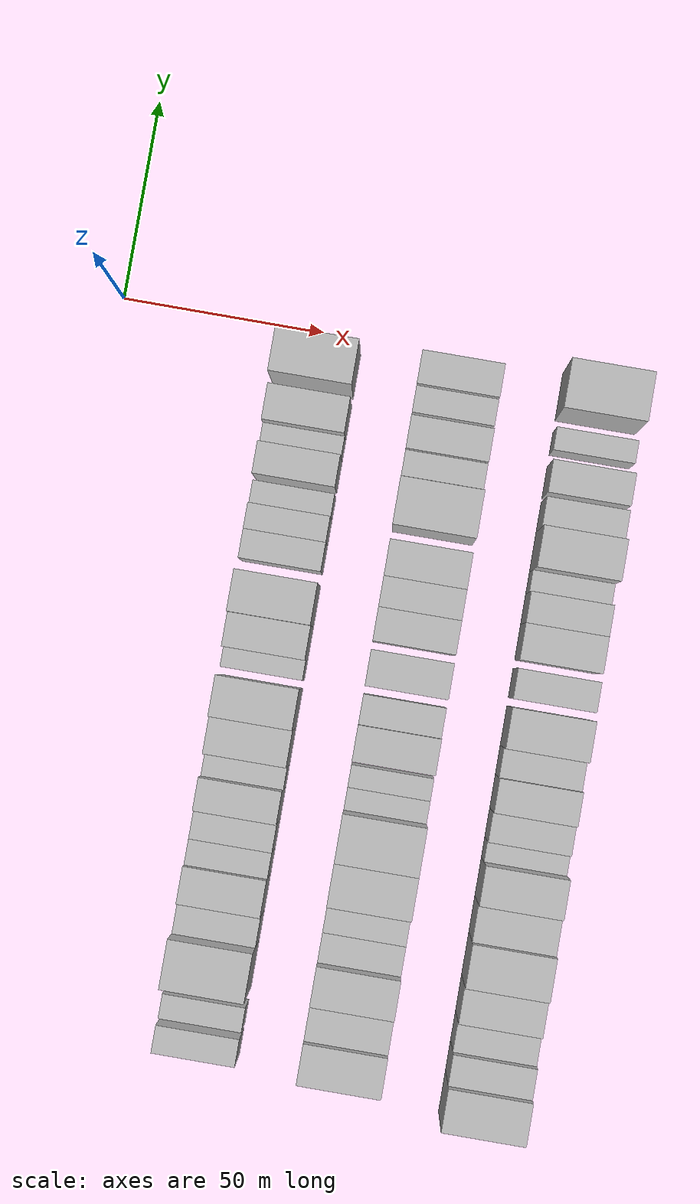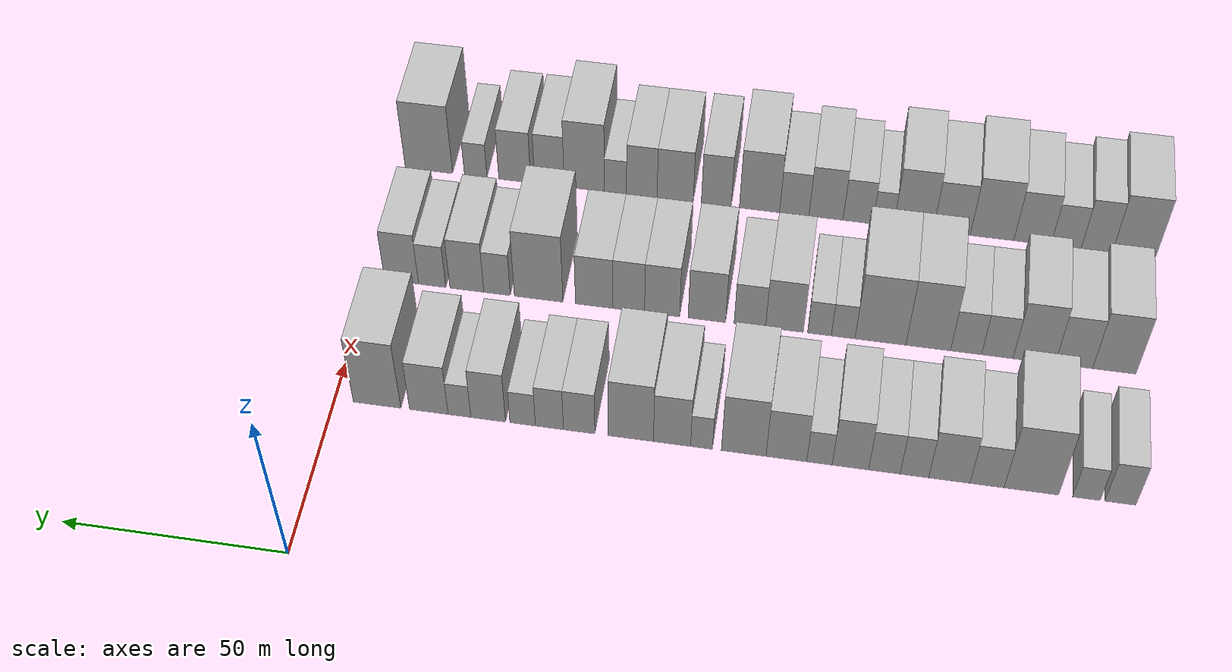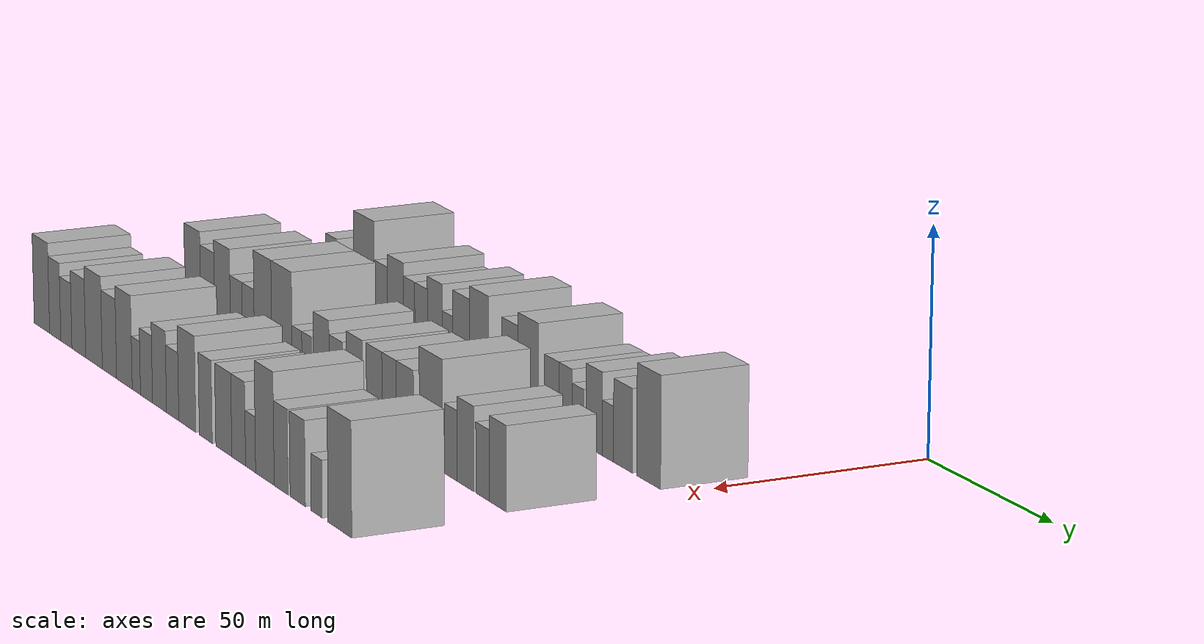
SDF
<sdf version="1.6">
 <world name="default">
  <model name="building_22">
   <static>1</static>
   <pose>50.0000 -174.5558 0 0.000000 0.000000 0.000000</pose>
   <link name="link">
    <pose>0 0 7.50 0 0 0</pose>
    <collision name="collision"><geometry><box><size>20.0000 6.6134 15.0000</size></box></geometry></collision>
    <visual name="visual">
     <cast_shadows>0</cast_shadows>
     <geometry><box><size>20.0000 6.6134 15.0000</size></box></geometry>
     <material>
      <script>
       <uri>model://HANNAS_wall/materials/scripts</uri>
       <uri>model://HANNAS_wall/materials/textures</uri>
       <name>vrc/HANNAS_wall</name>
      </script>
     </material>
    </visual>
   </link>
  </model>
  <model name="building_23">
   <static>1</static>
   <pose>50.0000 -167.2927 0 0.000000 0.000000 0.000000</pose>
   <link name="link">
    <pose>0 0 6.00 0 0 0</pose>
    <collision name="collision"><geometry><box><size>20.0000 5.9128 12.0000</size></box></geometry></collision>
    <visual name="visual">
     <cast_shadows>0</cast_shadows>
     <geometry><box><size>20.0000 5.9128 12.0000</size></box></geometry>
     <material>
      <script>
       <uri>model://HANNAS_wall/materials/scripts</uri>
       <uri>model://HANNAS_wall/materials/textures</uri>
       <name>vrc/HANNAS_wall</name>
      </script>
     </material>
    </visual>
   </link>
  </model>
  <model name="building_24">
   <static>1</static>
   <pose>50.0000 -155.4569 0 0.000000 0.000000 0.000000</pose>
   <link name="link">
    <pose>0 0 12.00 0 0 0</pose>
    <collision name="collision"><geometry><box><size>20.0000 11.7588 24.0000</size></box></geometry></collision>
    <visual name="visual">
     <cast_shadows>0</cast_shadows>
     <geometry><box><size>20.0000 11.7588 24.0000</size></box></geometry>
     <material>
      <script>
       <uri>model://HANNAS_wall/materials/scripts</uri>
       <uri>model://HANNAS_wall/materials/textures</uri>
       <name>vrc/HANNAS_wall</name>
      </script>
     </material>
    </visual>
   </link>
  </model>
  <model name="building_25">
   <static>1</static>
   <pose>50.0000 -145.8737 0 0.000000 0.000000 0.000000</pose>
   <link name="link">
    <pose>0 0 7.50 0 0 0</pose>
    <collision name="collision"><geometry><box><size>20.0000 7.4076 15.0000</size></box></geometry></collision>
    <visual name="visual">
     <cast_shadows>0</cast_shadows>
     <geometry><box><size>20.0000 7.4076 15.0000</size></box></geometry>
     <material>
      <script>
       <uri>model://HANNAS_wall/materials/scripts</uri>
       <uri>model://HANNAS_wall/materials/textures</uri>
       <name>vrc/HANNAS_wall</name>
      </script>
     </material>
    </visual>
   </link>
  </model>
  <model name="building_26">
   <static>1</static>
   <pose>50.0000 -137.6836 0 0.000000 0.000000 0.000000</pose>
   <link name="link">
    <pose>0 0 9.00 0 0 0</pose>
    <collision name="collision"><geometry><box><size>20.0000 8.9725 18.0000</size></box></geometry></collision>
    <visual name="visual">
     <cast_shadows>0</cast_shadows>
     <geometry><box><size>20.0000 8.9725 18.0000</size></box></geometry>
     <material>
      <script>
       <uri>model://HANNAS_wall/materials/scripts</uri>
       <uri>model://HANNAS_wall/materials/textures</uri>
       <name>vrc/HANNAS_wall</name>
      </script>
     </material>
    </visual>
   </link>
  </model>
  <model name="building_27">
   <static>1</static>
   <pose>50.0000 -130.0861 0 0.000000 0.000000 0.000000</pose>
   <link name="link">
    <pose>0 0 7.50 0 0 0</pose>
    <collision name="collision"><geometry><box><size>20.0000 6.2227 15.0000</size></box></geometry></collision>
    <visual name="visual">
     <cast_shadows>0</cast_shadows>
     <geometry><box><size>20.0000 6.2227 15.0000</size></box></geometry>
     <material>
      <script>
       <uri>model://HANNAS_wall/materials/scripts</uri>
       <uri>model://HANNAS_wall/materials/textures</uri>
       <name>vrc/HANNAS_wall</name>
      </script>
     </material>
    </visual>
   </link>
  </model>
  <model name="building_28">
   <static>1</static>
   <pose>50.0000 -123.5246 0 0.000000 0.000000 0.000000</pose>
   <link name="link">
    <pose>0 0 7.50 0 0 0</pose>
    <collision name="collision"><geometry><box><size>20.0000 6.9003 15.0000</size></box></geometry></collision>
    <visual name="visual">
     <cast_shadows>0</cast_shadows>
     <geometry><box><size>20.0000 6.9003 15.0000</size></box></geometry>
     <material>
      <script>
       <uri>model://HANNAS_wall/materials/scripts</uri>
       <uri>model://HANNAS_wall/materials/textures</uri>
       <name>vrc/HANNAS_wall</name>
      </script>
     </material>
    </visual>
   </link>
  </model>
  <model name="building_29">
   <static>1</static>
   <pose>50.0000 -116.0841 0 0.000000 0.000000 0.000000</pose>
   <link name="link">
    <pose>0 0 9.00 0 0 0</pose>
    <collision name="collision"><geometry><box><size>20.0000 7.9808 18.0000</size></box></geometry></collision>
    <visual name="visual">
     <cast_shadows>0</cast_shadows>
     <geometry><box><size>20.0000 7.9808 18.0000</size></box></geometry>
     <material>
      <script>
       <uri>model://HANNAS_wall/materials/scripts</uri>
       <uri>model://HANNAS_wall/materials/textures</uri>
       <name>vrc/HANNAS_wall</name>
      </script>
     </material>
    </visual>
   </link>
  </model>
  <model name="building_30">
   <static>1</static>
   <pose>50.0000 -109.2844 0 0.000000 0.000000 0.000000</pose>
   <link name="link">
    <pose>0 0 6.00 0 0 0</pose>
    <collision name="collision"><geometry><box><size>20.0000 5.6186 12.0000</size></box></geometry></collision>
    <visual name="visual">
     <cast_shadows>0</cast_shadows>
     <geometry><box><size>20.0000 5.6186 12.0000</size></box></geometry>
     <material>
      <script>
       <uri>model://HANNAS_wall/materials/scripts</uri>
       <uri>model://HANNAS_wall/materials/textures</uri>
       <name>vrc/HANNAS_wall</name>
      </script>
     </material>
    </visual>
   </link>
  </model>
  <model name="building_31">
   <static>1</static>
   <pose>50.0000 -101.9850 0 0.000000 0.000000 0.000000</pose>
   <link name="link">
    <pose>0 0 9.00 0 0 0</pose>
    <collision name="collision"><geometry><box><size>20.0000 8.9801 18.0000</size></box></geometry></collision>
    <visual name="visual">
     <cast_shadows>0</cast_shadows>
     <geometry><box><size>20.0000 8.9801 18.0000</size></box></geometry>
     <material>
      <script>
       <uri>model://HANNAS_wall/materials/scripts</uri>
       <uri>model://HANNAS_wall/materials/textures</uri>
       <name>vrc/HANNAS_wall</name>
      </script>
     </material>
    </visual>
   </link>
  </model>
  <model name="building_32">
   <static>1</static>
   <pose>50.0000 -92.5490 0 0.000000 0.000000 0.000000</pose>
   <link name="link">
    <pose>0 0 10.50 0 0 0</pose>
    <collision name="collision"><geometry><box><size>20.0000 9.8919 21.0000</size></box></geometry></collision>
    <visual name="visual">
     <cast_shadows>0</cast_shadows>
     <geometry><box><size>20.0000 9.8919 21.0000</size></box></geometry>
     <material>
      <script>
       <uri>model://HANNAS_wall/materials/scripts</uri>
       <uri>model://HANNAS_wall/materials/textures</uri>
       <name>vrc/HANNAS_wall</name>
      </script>
     </material>
    </visual>
   </link>
  </model>
  <model name="building_33">
   <static>1</static>
   <pose>50.0000 -83.1782 0 0.000000 0.000000 0.000000</pose>
   <link name="link">
    <pose>0 0 6.00 0 0 0</pose>
    <collision name="collision"><geometry><box><size>20.0000 4.8496 12.0000</size></box></geometry></collision>
    <visual name="visual">
     <cast_shadows>0</cast_shadows>
     <geometry><box><size>20.0000 4.8496 12.0000</size></box></geometry>
     <material>
      <script>
       <uri>model://HANNAS_wall/materials/scripts</uri>
       <uri>model://HANNAS_wall/materials/textures</uri>
       <name>vrc/HANNAS_wall</name>
      </script>
     </material>
    </visual>
   </link>
  </model>
  <model name="building_34">
   <static>1</static>
   <pose>50.0000 -76.5989 0 0.000000 0.000000 0.000000</pose>
   <link name="link">
    <pose>0 0 9.00 0 0 0</pose>
    <collision name="collision"><geometry><box><size>20.0000 8.3091 18.0000</size></box></geometry></collision>
    <visual name="visual">
     <cast_shadows>0</cast_shadows>
     <geometry><box><size>20.0000 8.3091 18.0000</size></box></geometry>
     <material>
      <script>
       <uri>model://HANNAS_wall/materials/scripts</uri>
       <uri>model://HANNAS_wall/materials/textures</uri>
       <name>vrc/HANNAS_wall</name>
      </script>
     </material>
    </visual>
   </link>
  </model>
  <model name="building_35">
   <static>1</static>
   <pose>50.0000 -67.3778 0 0.000000 0.000000 0.000000</pose>
   <link name="link">
    <pose>0 0 10.50 0 0 0</pose>
    <collision name="collision"><geometry><box><size>20.0000 10.1330 21.0000</size></box></geometry></collision>
    <visual name="visual">
     <cast_shadows>0</cast_shadows>
     <geometry><box><size>20.0000 10.1330 21.0000</size></box></geometry>
     <material>
      <script>
       <uri>model://HANNAS_wall/materials/scripts</uri>
       <uri>model://HANNAS_wall/materials/textures</uri>
       <name>vrc/HANNAS_wall</name>
      </script>
     </material>
    </visual>
   </link>
  </model>
  <model name="building_36">
   <static>1</static>
   <pose>50.0000 -55.7627 0 0.000000 0.000000 0.000000</pose>
   <link name="link">
    <pose>0 0 7.50 0 0 0</pose>
    <collision name="collision"><geometry><box><size>20.0000 7.0973 15.0000</size></box></geometry></collision>
    <visual name="visual">
     <cast_shadows>0</cast_shadows>
     <geometry><box><size>20.0000 7.0973 15.0000</size></box></geometry>
     <material>
      <script>
       <uri>model://HANNAS_wall/materials/scripts</uri>
       <uri>model://HANNAS_wall/materials/textures</uri>
       <name>vrc/HANNAS_wall</name>
      </script>
     </material>
    </visual>
   </link>
  </model>
  <model name="building_37">
   <static>1</static>
   <pose>50.0000 -49.0424 0 0.000000 0.000000 0.000000</pose>
   <link name="link">
    <pose>0 0 7.50 0 0 0</pose>
    <collision name="collision"><geometry><box><size>20.0000 6.3432 15.0000</size></box></geometry></collision>
    <visual name="visual">
     <cast_shadows>0</cast_shadows>
     <geometry><box><size>20.0000 6.3432 15.0000</size></box></geometry>
     <material>
      <script>
       <uri>model://HANNAS_wall/materials/scripts</uri>
       <uri>model://HANNAS_wall/materials/textures</uri>
       <name>vrc/HANNAS_wall</name>
      </script>
     </material>
    </visual>
   </link>
  </model>
  <model name="building_38">
   <static>1</static>
   <pose>50.0000 -42.9923 0 0.000000 0.000000 0.000000</pose>
   <link name="link">
    <pose>0 0 6.00 0 0 0</pose>
    <collision name="collision"><geometry><box><size>20.0000 5.7570 12.0000</size></box></geometry></collision>
    <visual name="visual">
     <cast_shadows>0</cast_shadows>
     <geometry><box><size>20.0000 5.7570 12.0000</size></box></geometry>
     <material>
      <script>
       <uri>model://HANNAS_wall/materials/scripts</uri>
       <uri>model://HANNAS_wall/materials/textures</uri>
       <name>vrc/HANNAS_wall</name>
      </script>
     </material>
    </visual>
   </link>
  </model>
  <model name="building_39">
   <static>1</static>
   <pose>50.0000 -35.1709 0 0.000000 0.000000 0.000000</pose>
   <link name="link">
    <pose>0 0 9.00 0 0 0</pose>
    <collision name="collision"><geometry><box><size>20.0000 7.8859 18.0000</size></box></geometry></collision>
    <visual name="visual">
     <cast_shadows>0</cast_shadows>
     <geometry><box><size>20.0000 7.8859 18.0000</size></box></geometry>
     <material>
      <script>
       <uri>model://HANNAS_wall/materials/scripts</uri>
       <uri>model://HANNAS_wall/materials/textures</uri>
       <name>vrc/HANNAS_wall</name>
      </script>
     </material>
    </visual>
   </link>
  </model>
  <model name="building_40">
   <static>1</static>
   <pose>50.0000 -28.6273 0 0.000000 0.000000 0.000000</pose>
   <link name="link">
    <pose>0 0 6.00 0 0 0</pose>
    <collision name="collision"><geometry><box><size>20.0000 5.2014 12.0000</size></box></geometry></collision>
    <visual name="visual">
     <cast_shadows>0</cast_shadows>
     <geometry><box><size>20.0000 5.2014 12.0000</size></box></geometry>
     <material>
      <script>
       <uri>model://HANNAS_wall/materials/scripts</uri>
       <uri>model://HANNAS_wall/materials/textures</uri>
       <name>vrc/HANNAS_wall</name>
      </script>
     </material>
    </visual>
   </link>
  </model>
  <model name="building_41">
   <static>1</static>
   <pose>50.0000 -21.6222 0 0.000000 0.000000 0.000000</pose>
   <link name="link">
    <pose>0 0 9.00 0 0 0</pose>
    <collision name="collision"><geometry><box><size>20.0000 8.8088 18.0000</size></box></geometry></collision>
    <visual name="visual">
     <cast_shadows>0</cast_shadows>
     <geometry><box><size>20.0000 8.8088 18.0000</size></box></geometry>
     <material>
      <script>
       <uri>model://HANNAS_wall/materials/scripts</uri>
       <uri>model://HANNAS_wall/materials/textures</uri>
       <name>vrc/HANNAS_wall</name>
      </script>
     </material>
    </visual>
   </link>
  </model>
  <model name="building_42">
   <static>1</static>
   <pose>50.0000 -9.7464 0 0.000000 0.000000 0.000000</pose>
   <link name="link">
    <pose>0 0 12.00 0 0 0</pose>
    <collision name="collision"><geometry><box><size>20.0000 10.9427 24.0000</size></box></geometry></collision>
    <visual name="visual">
     <cast_shadows>0</cast_shadows>
     <geometry><box><size>20.0000 10.9427 24.0000</size></box></geometry>
     <material>
      <script>
       <uri>model://HANNAS_wall/materials/scripts</uri>
       <uri>model://HANNAS_wall/materials/textures</uri>
       <name>vrc/HANNAS_wall</name>
      </script>
     </material>
    </visual>
   </link>
  </model>
  <model name="building_105">
   <static>1</static>
   <pose>85.0000 -173.3195 0 0.000000 0.000000 0.000000</pose>
   <link name="link">
    <pose>0 0 10.50 0 0 0</pose>
    <collision name="collision"><geometry><box><size>20.0000 9.7576 21.0000</size></box></geometry></collision>
    <visual name="visual">
     <cast_shadows>0</cast_shadows>
     <geometry><box><size>20.0000 9.7576 21.0000</size></box></geometry>
     <material>
      <script>
       <uri>model://HANNAS_wall/materials/scripts</uri>
       <uri>model://HANNAS_wall/materials/textures</uri>
       <name>vrc/HANNAS_wall</name>
      </script>
     </material>
    </visual>
   </link>
  </model>
  <model name="building_106">
   <static>1</static>
   <pose>85.0000 -164.2021 0 0.000000 0.000000 0.000000</pose>
   <link name="link">
    <pose>0 0 9.00 0 0 0</pose>
    <collision name="collision"><geometry><box><size>20.0000 8.4773 18.0000</size></box></geometry></collision>
    <visual name="visual">
     <cast_shadows>0</cast_shadows>
     <geometry><box><size>20.0000 8.4773 18.0000</size></box></geometry>
     <material>
      <script>
       <uri>model://HANNAS_wall/materials/scripts</uri>
       <uri>model://HANNAS_wall/materials/textures</uri>
       <name>vrc/HANNAS_wall</name>
      </script>
     </material>
    </visual>
   </link>
  </model>
  <model name="building_107">
   <static>1</static>
   <pose>85.0000 -155.1907 0 0.000000 0.000000 0.000000</pose>
   <link name="link">
    <pose>0 0 10.50 0 0 0</pose>
    <collision name="collision"><geometry><box><size>20.0000 9.5456 21.0000</size></box></geometry></collision>
    <visual name="visual">
     <cast_shadows>0</cast_shadows>
     <geometry><box><size>20.0000 9.5456 21.0000</size></box></geometry>
     <material>
      <script>
       <uri>model://HANNAS_wall/materials/scripts</uri>
       <uri>model://HANNAS_wall/materials/textures</uri>
       <name>vrc/HANNAS_wall</name>
      </script>
     </material>
    </visual>
   </link>
  </model>
  <model name="building_108">
   <static>1</static>
   <pose>85.0000 -146.8540 0 0.000000 0.000000 0.000000</pose>
   <link name="link">
    <pose>0 0 7.50 0 0 0</pose>
    <collision name="collision"><geometry><box><size>20.0000 7.1278 15.0000</size></box></geometry></collision>
    <visual name="visual">
     <cast_shadows>0</cast_shadows>
     <geometry><box><size>20.0000 7.1278 15.0000</size></box></geometry>
     <material>
      <script>
       <uri>model://HANNAS_wall/materials/scripts</uri>
       <uri>model://HANNAS_wall/materials/textures</uri>
       <name>vrc/HANNAS_wall</name>
      </script>
     </material>
    </visual>
   </link>
  </model>
  <model name="building_109">
   <static>1</static>
   <pose>85.0000 -139.7473 0 0.000000 0.000000 0.000000</pose>
   <link name="link">
    <pose>0 0 7.50 0 0 0</pose>
    <collision name="collision"><geometry><box><size>20.0000 7.0855 15.0000</size></box></geometry></collision>
    <visual name="visual">
     <cast_shadows>0</cast_shadows>
     <geometry><box><size>20.0000 7.0855 15.0000</size></box></geometry>
     <material>
      <script>
       <uri>model://HANNAS_wall/materials/scripts</uri>
       <uri>model://HANNAS_wall/materials/textures</uri>
       <name>vrc/HANNAS_wall</name>
      </script>
     </material>
    </visual>
   </link>
  </model>
  <model name="building_110">
   <static>1</static>
   <pose>85.0000 -131.0935 0 0.000000 0.000000 0.000000</pose>
   <link name="link">
    <pose>0 0 12.00 0 0 0</pose>
    <collision name="collision"><geometry><box><size>20.0000 10.2220 24.0000</size></box></geometry></collision>
    <visual name="visual">
     <cast_shadows>0</cast_shadows>
     <geometry><box><size>20.0000 10.2220 24.0000</size></box></geometry>
     <material>
      <script>
       <uri>model://HANNAS_wall/materials/scripts</uri>
       <uri>model://HANNAS_wall/materials/textures</uri>
       <name>vrc/HANNAS_wall</name>
      </script>
     </material>
    </visual>
   </link>
  </model>
  <model name="building_111">
   <static>1</static>
   <pose>85.0000 -120.1341 0 0.000000 0.000000 0.000000</pose>
   <link name="link">
    <pose>0 0 12.00 0 0 0</pose>
    <collision name="collision"><geometry><box><size>20.0000 11.6970 24.0000</size></box></geometry></collision>
    <visual name="visual">
     <cast_shadows>0</cast_shadows>
     <geometry><box><size>20.0000 11.6970 24.0000</size></box></geometry>
     <material>
      <script>
       <uri>model://HANNAS_wall/materials/scripts</uri>
       <uri>model://HANNAS_wall/materials/textures</uri>
       <name>vrc/HANNAS_wall</name>
      </script>
     </material>
    </visual>
   </link>
  </model>
  <model name="building_112">
   <static>1</static>
   <pose>85.0000 -111.5449 0 0.000000 0.000000 0.000000</pose>
   <link name="link">
    <pose>0 0 6.00 0 0 0</pose>
    <collision name="collision"><geometry><box><size>20.0000 5.4813 12.0000</size></box></geometry></collision>
    <visual name="visual">
     <cast_shadows>0</cast_shadows>
     <geometry><box><size>20.0000 5.4813 12.0000</size></box></geometry>
     <material>
      <script>
       <uri>model://HANNAS_wall/materials/scripts</uri>
       <uri>model://HANNAS_wall/materials/textures</uri>
       <name>vrc/HANNAS_wall</name>
      </script>
     </material>
    </visual>
   </link>
  </model>
  <model name="building_113">
   <static>1</static>
   <pose>85.0000 -106.0709 0 0.000000 0.000000 0.000000</pose>
   <link name="link">
    <pose>0 0 6.00 0 0 0</pose>
    <collision name="collision"><geometry><box><size>20.0000 5.4667 12.0000</size></box></geometry></collision>
    <visual name="visual">
     <cast_shadows>0</cast_shadows>
     <geometry><box><size>20.0000 5.4667 12.0000</size></box></geometry>
     <material>
      <script>
       <uri>model://HANNAS_wall/materials/scripts</uri>
       <uri>model://HANNAS_wall/materials/textures</uri>
       <name>vrc/HANNAS_wall</name>
      </script>
     </material>
    </visual>
   </link>
  </model>
  <model name="building_114">
   <static>1</static>
   <pose>85.0000 -97.9520 0 0.000000 0.000000 0.000000</pose>
   <link name="link">
    <pose>0 0 9.00 0 0 0</pose>
    <collision name="collision"><geometry><box><size>20.0000 8.7711 18.0000</size></box></geometry></collision>
    <visual name="visual">
     <cast_shadows>0</cast_shadows>
     <geometry><box><size>20.0000 8.7711 18.0000</size></box></geometry>
     <material>
      <script>
       <uri>model://HANNAS_wall/materials/scripts</uri>
       <uri>model://HANNAS_wall/materials/textures</uri>
       <name>vrc/HANNAS_wall</name>
      </script>
     </material>
    </visual>
   </link>
  </model>
  <model name="building_115">
   <static>1</static>
   <pose>85.0000 -89.9002 0 0.000000 0.000000 0.000000</pose>
   <link name="link">
    <pose>0 0 7.50 0 0 0</pose>
    <collision name="collision"><geometry><box><size>20.0000 7.3324 15.0000</size></box></geometry></collision>
    <visual name="visual">
     <cast_shadows>0</cast_shadows>
     <geometry><box><size>20.0000 7.3324 15.0000</size></box></geometry>
     <material>
      <script>
       <uri>model://HANNAS_wall/materials/scripts</uri>
       <uri>model://HANNAS_wall/materials/textures</uri>
       <name>vrc/HANNAS_wall</name>
      </script>
     </material>
    </visual>
   </link>
  </model>
  <model name="building_116">
   <static>1</static>
   <pose>85.0000 -79.8592 0 0.000000 0.000000 0.000000</pose>
   <link name="link">
    <pose>0 0 9.00 0 0 0</pose>
    <collision name="collision"><geometry><box><size>20.0000 8.7495 18.0000</size></box></geometry></collision>
    <visual name="visual">
     <cast_shadows>0</cast_shadows>
     <geometry><box><size>20.0000 8.7495 18.0000</size></box></geometry>
     <material>
      <script>
       <uri>model://HANNAS_wall/materials/scripts</uri>
       <uri>model://HANNAS_wall/materials/textures</uri>
       <name>vrc/HANNAS_wall</name>
      </script>
     </material>
    </visual>
   </link>
  </model>
  <model name="building_117">
   <static>1</static>
   <pose>85.0000 -69.3594 0 0.000000 0.000000 0.000000</pose>
   <link name="link">
    <pose>0 0 9.00 0 0 0</pose>
    <collision name="collision"><geometry><box><size>20.0000 8.2502 18.0000</size></box></geometry></collision>
    <visual name="visual">
     <cast_shadows>0</cast_shadows>
     <geometry><box><size>20.0000 8.2502 18.0000</size></box></geometry>
     <material>
      <script>
       <uri>model://HANNAS_wall/materials/scripts</uri>
       <uri>model://HANNAS_wall/materials/textures</uri>
       <name>vrc/HANNAS_wall</name>
      </script>
     </material>
    </visual>
   </link>
  </model>
  <model name="building_118">
   <static>1</static>
   <pose>85.0000 -61.5029 0 0.000000 0.000000 0.000000</pose>
   <link name="link">
    <pose>0 0 9.00 0 0 0</pose>
    <collision name="collision"><geometry><box><size>20.0000 7.4628 18.0000</size></box></geometry></collision>
    <visual name="visual">
     <cast_shadows>0</cast_shadows>
     <geometry><box><size>20.0000 7.4628 18.0000</size></box></geometry>
     <material>
      <script>
       <uri>model://HANNAS_wall/materials/scripts</uri>
       <uri>model://HANNAS_wall/materials/textures</uri>
       <name>vrc/HANNAS_wall</name>
      </script>
     </material>
    </visual>
   </link>
  </model>
  <model name="building_119">
   <static>1</static>
   <pose>85.0000 -53.3447 0 0.000000 0.000000 0.000000</pose>
   <link name="link">
    <pose>0 0 9.00 0 0 0</pose>
    <collision name="collision"><geometry><box><size>20.0000 8.8536 18.0000</size></box></geometry></collision>
    <visual name="visual">
     <cast_shadows>0</cast_shadows>
     <geometry><box><size>20.0000 8.8536 18.0000</size></box></geometry>
     <material>
      <script>
       <uri>model://HANNAS_wall/materials/scripts</uri>
       <uri>model://HANNAS_wall/materials/textures</uri>
       <name>vrc/HANNAS_wall</name>
      </script>
     </material>
    </visual>
   </link>
  </model>
  <model name="building_120">
   <static>1</static>
   <pose>85.0000 -40.1469 0 0.000000 0.000000 0.000000</pose>
   <link name="link">
    <pose>0 0 12.00 0 0 0</pose>
    <collision name="collision"><geometry><box><size>20.0000 11.5421 24.0000</size></box></geometry></collision>
    <visual name="visual">
     <cast_shadows>0</cast_shadows>
     <geometry><box><size>20.0000 11.5421 24.0000</size></box></geometry>
     <material>
      <script>
       <uri>model://HANNAS_wall/materials/scripts</uri>
       <uri>model://HANNAS_wall/materials/textures</uri>
       <name>vrc/HANNAS_wall</name>
      </script>
     </material>
    </visual>
   </link>
  </model>
  <model name="building_121">
   <static>1</static>
   <pose>85.0000 -30.2189 0 0.000000 0.000000 0.000000</pose>
   <link name="link">
    <pose>0 0 7.50 0 0 0</pose>
    <collision name="collision"><geometry><box><size>20.0000 6.3140 15.0000</size></box></geometry></collision>
    <visual name="visual">
     <cast_shadows>0</cast_shadows>
     <geometry><box><size>20.0000 6.3140 15.0000</size></box></geometry>
     <material>
      <script>
       <uri>model://HANNAS_wall/materials/scripts</uri>
       <uri>model://HANNAS_wall/materials/textures</uri>
       <name>vrc/HANNAS_wall</name>
      </script>
     </material>
    </visual>
   </link>
  </model>
  <model name="building_122">
   <static>1</static>
   <pose>85.0000 -22.9993 0 0.000000 0.000000 0.000000</pose>
   <link name="link">
    <pose>0 0 9.00 0 0 0</pose>
    <collision name="collision"><geometry><box><size>20.0000 8.1250 18.0000</size></box></geometry></collision>
    <visual name="visual">
     <cast_shadows>0</cast_shadows>
     <geometry><box><size>20.0000 8.1250 18.0000</size></box></geometry>
     <material>
      <script>
       <uri>model://HANNAS_wall/materials/scripts</uri>
       <uri>model://HANNAS_wall/materials/textures</uri>
       <name>vrc/HANNAS_wall</name>
      </script>
     </material>
    </visual>
   </link>
  </model>
  <model name="building_123">
   <static>1</static>
   <pose>85.0000 -14.6637 0 0.000000 0.000000 0.000000</pose>
   <link name="link">
    <pose>0 0 7.50 0 0 0</pose>
    <collision name="collision"><geometry><box><size>20.0000 6.5463 15.0000</size></box></geometry></collision>
    <visual name="visual">
     <cast_shadows>0</cast_shadows>
     <geometry><box><size>20.0000 6.5463 15.0000</size></box></geometry>
     <material>
      <script>
       <uri>model://HANNAS_wall/materials/scripts</uri>
       <uri>model://HANNAS_wall/materials/textures</uri>
       <name>vrc/HANNAS_wall</name>
      </script>
     </material>
    </visual>
   </link>
  </model>
  <model name="building_124">
   <static>1</static>
   <pose>85.0000 -7.3008 0 0.000000 0.000000 0.000000</pose>
   <link name="link">
    <pose>0 0 9.00 0 0 0</pose>
    <collision name="collision"><geometry><box><size>20.0000 8.1794 18.0000</size></box></geometry></collision>
    <visual name="visual">
     <cast_shadows>0</cast_shadows>
     <geometry><box><size>20.0000 8.1794 18.0000</size></box></geometry>
     <material>
      <script>
       <uri>model://HANNAS_wall/materials/scripts</uri>
       <uri>model://HANNAS_wall/materials/textures</uri>
       <name>vrc/HANNAS_wall</name>
      </script>
     </material>
    </visual>
   </link>
  </model>
  <model name="building_186">
   <static>1</static>
   <pose>120.0000 -178.0588 0 0.000000 0.000000 0.000000</pose>
   <link name="link">
    <pose>0 0 10.50 0 0 0</pose>
    <collision name="collision"><geometry><box><size>20.0000 10.1929 21.0000</size></box></geometry></collision>
    <visual name="visual">
     <cast_shadows>0</cast_shadows>
     <geometry><box><size>20.0000 10.1929 21.0000</size></box></geometry>
     <material>
      <script>
       <uri>model://HANNAS_wall/materials/scripts</uri>
       <uri>model://HANNAS_wall/materials/textures</uri>
       <name>vrc/HANNAS_wall</name>
      </script>
     </material>
    </visual>
   </link>
  </model>
  <model name="building_187">
   <static>1</static>
   <pose>120.0000 -169.2877 0 0.000000 0.000000 0.000000</pose>
   <link name="link">
    <pose>0 0 9.00 0 0 0</pose>
    <collision name="collision"><geometry><box><size>20.0000 7.3493 18.0000</size></box></geometry></collision>
    <visual name="visual">
     <cast_shadows>0</cast_shadows>
     <geometry><box><size>20.0000 7.3493 18.0000</size></box></geometry>
     <material>
      <script>
       <uri>model://HANNAS_wall/materials/scripts</uri>
       <uri>model://HANNAS_wall/materials/textures</uri>
       <name>vrc/HANNAS_wall</name>
      </script>
     </material>
    </visual>
   </link>
  </model>
  <model name="building_188">
   <static>1</static>
   <pose>120.0000 -162.0311 0 0.000000 0.000000 0.000000</pose>
   <link name="link">
    <pose>0 0 7.50 0 0 0</pose>
    <collision name="collision"><geometry><box><size>20.0000 7.1641 15.0000</size></box></geometry></collision>
    <visual name="visual">
     <cast_shadows>0</cast_shadows>
     <geometry><box><size>20.0000 7.1641 15.0000</size></box></geometry>
     <material>
      <script>
       <uri>model://HANNAS_wall/materials/scripts</uri>
       <uri>model://HANNAS_wall/materials/textures</uri>
       <name>vrc/HANNAS_wall</name>
      </script>
     </material>
    </visual>
   </link>
  </model>
  <model name="building_189">
   <static>1</static>
   <pose>120.0000 -154.0308 0 0.000000 0.000000 0.000000</pose>
   <link name="link">
    <pose>0 0 9.00 0 0 0</pose>
    <collision name="collision"><geometry><box><size>20.0000 8.8364 18.0000</size></box></geometry></collision>
    <visual name="visual">
     <cast_shadows>0</cast_shadows>
     <geometry><box><size>20.0000 8.8364 18.0000</size></box></geometry>
     <material>
      <script>
       <uri>model://HANNAS_wall/materials/scripts</uri>
       <uri>model://HANNAS_wall/materials/textures</uri>
       <name>vrc/HANNAS_wall</name>
      </script>
     </material>
    </visual>
   </link>
  </model>
  <model name="building_190">
   <static>1</static>
   <pose>120.0000 -144.3987 0 0.000000 0.000000 0.000000</pose>
   <link name="link">
    <pose>0 0 10.50 0 0 0</pose>
    <collision name="collision"><geometry><box><size>20.0000 10.4277 21.0000</size></box></geometry></collision>
    <visual name="visual">
     <cast_shadows>0</cast_shadows>
     <geometry><box><size>20.0000 10.4277 21.0000</size></box></geometry>
     <material>
      <script>
       <uri>model://HANNAS_wall/materials/scripts</uri>
       <uri>model://HANNAS_wall/materials/textures</uri>
       <name>vrc/HANNAS_wall</name>
      </script>
     </material>
    </visual>
   </link>
  </model>
  <model name="building_191">
   <static>1</static>
   <pose>120.0000 -134.7394 0 0.000000 0.000000 0.000000</pose>
   <link name="link">
    <pose>0 0 9.00 0 0 0</pose>
    <collision name="collision"><geometry><box><size>20.0000 8.8908 18.0000</size></box></geometry></collision>
    <visual name="visual">
     <cast_shadows>0</cast_shadows>
     <geometry><box><size>20.0000 8.8908 18.0000</size></box></geometry>
     <material>
      <script>
       <uri>model://HANNAS_wall/materials/scripts</uri>
       <uri>model://HANNAS_wall/materials/textures</uri>
       <name>vrc/HANNAS_wall</name>
      </script>
     </material>
    </visual>
   </link>
  </model>
  <model name="building_192">
   <static>1</static>
   <pose>120.0000 -125.5331 0 0.000000 0.000000 0.000000</pose>
   <link name="link">
    <pose>0 0 10.50 0 0 0</pose>
    <collision name="collision"><geometry><box><size>20.0000 9.5219 21.0000</size></box></geometry></collision>
    <visual name="visual">
     <cast_shadows>0</cast_shadows>
     <geometry><box><size>20.0000 9.5219 21.0000</size></box></geometry>
     <material>
      <script>
       <uri>model://HANNAS_wall/materials/scripts</uri>
       <uri>model://HANNAS_wall/materials/textures</uri>
       <name>vrc/HANNAS_wall</name>
      </script>
     </material>
    </visual>
   </link>
  </model>
  <model name="building_193">
   <static>1</static>
   <pose>120.0000 -118.2791 0 0.000000 0.000000 0.000000</pose>
   <link name="link">
    <pose>0 0 6.00 0 0 0</pose>
    <collision name="collision"><geometry><box><size>20.0000 4.9862 12.0000</size></box></geometry></collision>
    <visual name="visual">
     <cast_shadows>0</cast_shadows>
     <geometry><box><size>20.0000 4.9862 12.0000</size></box></geometry>
     <material>
      <script>
       <uri>model://HANNAS_wall/materials/scripts</uri>
       <uri>model://HANNAS_wall/materials/textures</uri>
       <name>vrc/HANNAS_wall</name>
      </script>
     </material>
    </visual>
   </link>
  </model>
  <model name="building_194">
   <static>1</static>
   <pose>120.0000 -112.1756 0 0.000000 0.000000 0.000000</pose>
   <link name="link">
    <pose>0 0 7.50 0 0 0</pose>
    <collision name="collision"><geometry><box><size>20.0000 7.2207 15.0000</size></box></geometry></collision>
    <visual name="visual">
     <cast_shadows>0</cast_shadows>
     <geometry><box><size>20.0000 7.2207 15.0000</size></box></geometry>
     <material>
      <script>
       <uri>model://HANNAS_wall/materials/scripts</uri>
       <uri>model://HANNAS_wall/materials/textures</uri>
       <name>vrc/HANNAS_wall</name>
      </script>
     </material>
    </visual>
   </link>
  </model>
  <model name="building_195">
   <static>1</static>
   <pose>120.0000 -104.4290 0 0.000000 0.000000 0.000000</pose>
   <link name="link">
    <pose>0 0 9.00 0 0 0</pose>
    <collision name="collision"><geometry><box><size>20.0000 8.2723 18.0000</size></box></geometry></collision>
    <visual name="visual">
     <cast_shadows>0</cast_shadows>
     <geometry><box><size>20.0000 8.2723 18.0000</size></box></geometry>
     <material>
      <script>
       <uri>model://HANNAS_wall/materials/scripts</uri>
       <uri>model://HANNAS_wall/materials/textures</uri>
       <name>vrc/HANNAS_wall</name>
      </script>
     </material>
    </visual>
   </link>
  </model>
  <model name="building_196">
   <static>1</static>
   <pose>120.0000 -96.7208 0 0.000000 0.000000 0.000000</pose>
   <link name="link">
    <pose>0 0 7.50 0 0 0</pose>
    <collision name="collision"><geometry><box><size>20.0000 7.1441 15.0000</size></box></geometry></collision>
    <visual name="visual">
     <cast_shadows>0</cast_shadows>
     <geometry><box><size>20.0000 7.1441 15.0000</size></box></geometry>
     <material>
      <script>
       <uri>model://HANNAS_wall/materials/scripts</uri>
       <uri>model://HANNAS_wall/materials/textures</uri>
       <name>vrc/HANNAS_wall</name>
      </script>
     </material>
    </visual>
   </link>
  </model>
  <model name="building_197">
   <static>1</static>
   <pose>120.0000 -88.2370 0 0.000000 0.000000 0.000000</pose>
   <link name="link">
    <pose>0 0 10.50 0 0 0</pose>
    <collision name="collision"><geometry><box><size>20.0000 9.8235 21.0000</size></box></geometry></collision>
    <visual name="visual">
     <cast_shadows>0</cast_shadows>
     <geometry><box><size>20.0000 9.8235 21.0000</size></box></geometry>
     <material>
      <script>
       <uri>model://HANNAS_wall/materials/scripts</uri>
       <uri>model://HANNAS_wall/materials/textures</uri>
       <name>vrc/HANNAS_wall</name>
      </script>
     </material>
    </visual>
   </link>
  </model>
  <model name="building_198">
   <static>1</static>
   <pose>120.0000 -77.6622 0 0.000000 0.000000 0.000000</pose>
   <link name="link">
    <pose>0 0 9.00 0 0 0</pose>
    <collision name="collision"><geometry><box><size>20.0000 7.3261 18.0000</size></box></geometry></collision>
    <visual name="visual">
     <cast_shadows>0</cast_shadows>
     <geometry><box><size>20.0000 7.3261 18.0000</size></box></geometry>
     <material>
      <script>
       <uri>model://HANNAS_wall/materials/scripts</uri>
       <uri>model://HANNAS_wall/materials/textures</uri>
       <name>vrc/HANNAS_wall</name>
      </script>
     </material>
    </visual>
   </link>
  </model>
  <model name="building_199">
   <static>1</static>
   <pose>120.0000 -67.5504 0 0.000000 0.000000 0.000000</pose>
   <link name="link">
    <pose>0 0 9.00 0 0 0</pose>
    <collision name="collision"><geometry><box><size>20.0000 8.8974 18.0000</size></box></geometry></collision>
    <visual name="visual">
     <cast_shadows>0</cast_shadows>
     <geometry><box><size>20.0000 8.8974 18.0000</size></box></geometry>
     <material>
      <script>
       <uri>model://HANNAS_wall/materials/scripts</uri>
       <uri>model://HANNAS_wall/materials/textures</uri>
       <name>vrc/HANNAS_wall</name>
      </script>
     </material>
    </visual>
   </link>
  </model>
  <model name="building_200">
   <static>1</static>
   <pose>120.0000 -59.3192 0 0.000000 0.000000 0.000000</pose>
   <link name="link">
    <pose>0 0 9.00 0 0 0</pose>
    <collision name="collision"><geometry><box><size>20.0000 7.5649 18.0000</size></box></geometry></collision>
    <visual name="visual">
     <cast_shadows>0</cast_shadows>
     <geometry><box><size>20.0000 7.5649 18.0000</size></box></geometry>
     <material>
      <script>
       <uri>model://HANNAS_wall/materials/scripts</uri>
       <uri>model://HANNAS_wall/materials/textures</uri>
       <name>vrc/HANNAS_wall</name>
      </script>
     </material>
    </visual>
   </link>
  </model>
  <model name="building_201">
   <static>1</static>
   <pose>120.0000 -52.8127 0 0.000000 0.000000 0.000000</pose>
   <link name="link">
    <pose>0 0 6.00 0 0 0</pose>
    <collision name="collision"><geometry><box><size>20.0000 5.4481 12.0000</size></box></geometry></collision>
    <visual name="visual">
     <cast_shadows>0</cast_shadows>
     <geometry><box><size>20.0000 5.4481 12.0000</size></box></geometry>
     <material>
      <script>
       <uri>model://HANNAS_wall/materials/scripts</uri>
       <uri>model://HANNAS_wall/materials/textures</uri>
       <name>vrc/HANNAS_wall</name>
      </script>
     </material>
    </visual>
   </link>
  </model>
  <model name="building_202">
   <static>1</static>
   <pose>120.0000 -45.0856 0 0.000000 0.000000 0.000000</pose>
   <link name="link">
    <pose>0 0 12.00 0 0 0</pose>
    <collision name="collision"><geometry><box><size>20.0000 10.0063 24.0000</size></box></geometry></collision>
    <visual name="visual">
     <cast_shadows>0</cast_shadows>
     <geometry><box><size>20.0000 10.0063 24.0000</size></box></geometry>
     <material>
      <script>
       <uri>model://HANNAS_wall/materials/scripts</uri>
       <uri>model://HANNAS_wall/materials/textures</uri>
       <name>vrc/HANNAS_wall</name>
      </script>
     </material>
    </visual>
   </link>
  </model>
  <model name="building_203">
   <static>1</static>
   <pose>120.0000 -36.3933 0 0.000000 0.000000 0.000000</pose>
   <link name="link">
    <pose>0 0 9.00 0 0 0</pose>
    <collision name="collision"><geometry><box><size>20.0000 7.3783 18.0000</size></box></geometry></collision>
    <visual name="visual">
     <cast_shadows>0</cast_shadows>
     <geometry><box><size>20.0000 7.3783 18.0000</size></box></geometry>
     <material>
      <script>
       <uri>model://HANNAS_wall/materials/scripts</uri>
       <uri>model://HANNAS_wall/materials/textures</uri>
       <name>vrc/HANNAS_wall</name>
      </script>
     </material>
    </visual>
   </link>
  </model>
  <model name="building_204">
   <static>1</static>
   <pose>120.0000 -27.7161 0 0.000000 0.000000 0.000000</pose>
   <link name="link">
    <pose>0 0 9.00 0 0 0</pose>
    <collision name="collision"><geometry><box><size>20.0000 7.9760 18.0000</size></box></geometry></collision>
    <visual name="visual">
     <cast_shadows>0</cast_shadows>
     <geometry><box><size>20.0000 7.9760 18.0000</size></box></geometry>
     <material>
      <script>
       <uri>model://HANNAS_wall/materials/scripts</uri>
       <uri>model://HANNAS_wall/materials/textures</uri>
       <name>vrc/HANNAS_wall</name>
      </script>
     </material>
    </visual>
   </link>
  </model>
  <model name="building_205">
   <static>1</static>
   <pose>120.0000 -17.9022 0 0.000000 0.000000 0.000000</pose>
   <link name="link">
    <pose>0 0 6.00 0 0 0</pose>
    <collision name="collision"><geometry><box><size>20.0000 5.6518 12.0000</size></box></geometry></collision>
    <visual name="visual">
     <cast_shadows>0</cast_shadows>
     <geometry><box><size>20.0000 5.6518 12.0000</size></box></geometry>
     <material>
      <script>
       <uri>model://HANNAS_wall/materials/scripts</uri>
       <uri>model://HANNAS_wall/materials/textures</uri>
       <name>vrc/HANNAS_wall</name>
      </script>
     </material>
    </visual>
   </link>
  </model>
  <model name="building_206">
   <static>1</static>
   <pose>120.0000 -6.1138 0 0.000000 0.000000 0.000000</pose>
   <link name="link">
    <pose>0 0 12.00 0 0 0</pose>
    <collision name="collision"><geometry><box><size>20.0000 11.9250 24.0000</size></box></geometry></collision>
    <visual name="visual">
     <cast_shadows>0</cast_shadows>
     <geometry><box><size>20.0000 11.9250 24.0000</size></box></geometry>
     <material>
      <script>
       <uri>model://HANNAS_wall/materials/scripts</uri>
       <uri>model://HANNAS_wall/materials/textures</uri>
       <name>vrc/HANNAS_wall</name>
      </script>
     </material>
    </visual>
   </link>
  </model>
 </world>
</sdf>
